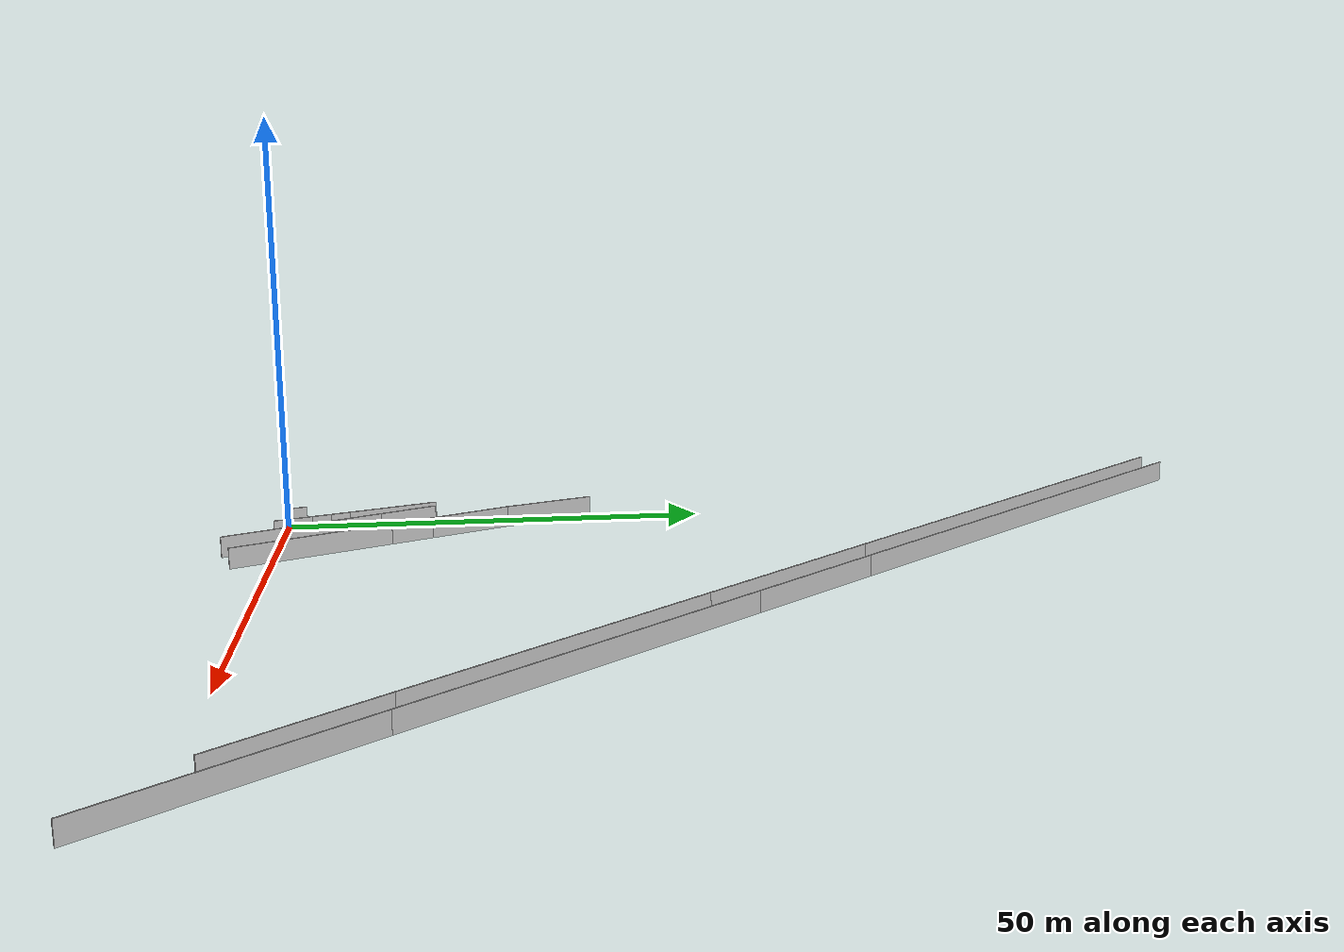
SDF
<?xml version="1.0" ?>
<sdf version="1.6">
  <model name="sps_2315">
    <pose frame="">0 0 0 0 -0 0</pose>
    <static>1</static>
    <self_collide>0</self_collide>
    <allow_auto_disable>0</allow_auto_disable>
    <link name="Wall82">
      <kinematic>0</kinematic>
      <gravity>1</gravity>
      <self_collide>0</self_collide>
      <collision name="collision">
        <geometry>
          <box>
            <size>30.2555 0.15 2.5</size>
          </box>
        </geometry>
        <pose frame="">0 0 0 0 -0 0</pose>
      </collision>
      <visual name="visual">
        <geometry>
          <box>
            <size>30.2555 0.15 2.5</size>
          </box>
        </geometry>
        <pose frame="">0 0 0 0 -0 0</pose>
        <cast_shadows>1</cast_shadows>
        <transparency>0.0</transparency>
      </visual>
      <pose frame="">69.8325 5.67018 1.25 0 -0 2.20088</pose>
    </link>
    <link name="Wall83">
      <kinematic>0</kinematic>
      <gravity>1</gravity>
      <self_collide>0</self_collide>
      <collision name="collision">
        <geometry>
          <box>
            <size>44.8899 0.15 2.5</size>
          </box>
        </geometry>
        <pose frame="">0 0 0 0 -0 0</pose>
      </collision>
      <visual name="visual">
        <geometry>
          <box>
            <size>44.8899 0.15 2.5</size>
          </box>
        </geometry>
        <pose frame="">0 0 0 0 -0 0</pose>
        <cast_shadows>1</cast_shadows>
        <transparency>0.0</transparency>
      </visual>
      <pose frame="">47.6942 36.0281 1.25 0 -0 2.20088</pose>
    </link>
    <link name="Wall84">
      <kinematic>0</kinematic>
      <gravity>1</gravity>
      <self_collide>0</self_collide>
      <collision name="collision">
        <geometry>
          <box>
            <size>16.9929 0.15 2.5</size>
          </box>
        </geometry>
        <pose frame="">0 0 0 0 -0 0</pose>
      </collision>
      <visual name="visual">
        <geometry>
          <box>
            <size>16.9929 0.15 2.5</size>
          </box>
        </geometry>
        <pose frame="">0 0 0 0 -0 0</pose>
        <cast_shadows>1</cast_shadows>
        <transparency>0.0</transparency>
      </visual>
      <pose frame="">29.4633 61.0281 1.25 0 -0 2.20088</pose>
    </link>
    <link name="Wall85">
      <kinematic>0</kinematic>
      <gravity>1</gravity>
      <self_collide>0</self_collide>
      <collision name="collision">
        <geometry>
          <box>
            <size>55.8873 0.15 2.5</size>
          </box>
        </geometry>
        <pose frame="">0 0 0 0 -0 0</pose>
      </collision>
      <visual name="visual">
        <geometry>
          <box>
            <size>55.8873 0.15 2.5</size>
          </box>
        </geometry>
        <pose frame="">0 0 0 0 -0 0</pose>
        <cast_shadows>1</cast_shadows>
        <transparency>0.0</transparency>
      </visual>
      <pose frame="">7.99237 90.471 1.25 0 -0 2.20088</pose>
    </link>
    <link name="Wall159">
      <kinematic>0</kinematic>
      <gravity>1</gravity>
      <self_collide>0</self_collide>
      <collision name="collision">
        <geometry>
          <box>
            <size>53.9646 0.15 2.5</size>
          </box>
        </geometry>
        <pose frame="">0 0 0 0 -0 0</pose>
      </collision>
      <visual name="visual">
        <geometry>
          <box>
            <size>53.9646 0.15 2.5</size>
          </box>
        </geometry>
        <pose frame="">0 0 0 0 -0 0</pose>
        <cast_shadows>1</cast_shadows>
        <transparency>0.0</transparency>
      </visual>
      <pose frame="">4.72197 89.6942 1.25 0 0 -0.940712</pose>
    </link>
    <link name="Wall160">
      <kinematic>0</kinematic>
      <gravity>1</gravity>
      <self_collide>0</self_collide>
      <collision name="collision">
        <geometry>
          <box>
            <size>23.5045 0.15 2.5</size>
          </box>
        </geometry>
        <pose frame="">0 0 0 0 -0 0</pose>
      </collision>
      <visual name="visual">
        <geometry>
          <box>
            <size>23.5045 0.15 2.5</size>
          </box>
        </geometry>
        <pose frame="">0 0 0 0 -0 0</pose>
        <cast_shadows>1</cast_shadows>
        <transparency>0.0</transparency>
      </visual>
      <pose frame="">27.5449 58.3975 1.25 0 0 -0.940712</pose>
    </link>
    <link name="Wall161">
      <kinematic>0</kinematic>
      <gravity>1</gravity>
      <self_collide>0</self_collide>
      <collision name="collision">
        <geometry>
          <box>
            <size>38.3784 0.15 2.5</size>
          </box>
        </geometry>
        <pose frame="">0 0 0 0 -0 0</pose>
      </collision>
      <visual name="visual">
        <geometry>
          <box>
            <size>38.3784 0.15 2.5</size>
          </box>
        </geometry>
        <pose frame="">0 0 0 0 -0 0</pose>
        <cast_shadows>1</cast_shadows>
        <transparency>0.0</transparency>
      </visual>
      <pose frame="">45.776 33.3975 1.25 0 0 -0.940712</pose>
    </link>
    <link name="Wall162">
      <kinematic>0</kinematic>
      <gravity>1</gravity>
      <self_collide>0</self_collide>
      <collision name="collision">
        <geometry>
          <box>
            <size>19.3454 0.15 2.5</size>
          </box>
        </geometry>
        <pose frame="">0 0 0 0 -0 0</pose>
      </collision>
      <visual name="visual">
        <geometry>
          <box>
            <size>19.3454 0.15 2.5</size>
          </box>
        </geometry>
        <pose frame="">0 0 0 0 -0 0</pose>
        <cast_shadows>1</cast_shadows>
        <transparency>0.0</transparency>
      </visual>
      <pose frame="">62.7818 10.0778 1.25 0 0 -0.940712</pose>
    </link>
    <link name="Wall386">
      <kinematic>0</kinematic>
      <gravity>1</gravity>
      <self_collide>0</self_collide>
      <collision name="collision">
        <geometry>
          <box>
            <size>19.1053 0.15 2.5</size>
          </box>
        </geometry>
        <pose frame="">0 0 0 0 -0 0</pose>
      </collision>
      <visual name="visual">
        <geometry>
          <box>
            <size>19.1053 0.15 2.5</size>
          </box>
        </geometry>
        <pose frame="">0 0 0 0 -0 0</pose>
        <cast_shadows>1</cast_shadows>
        <transparency>0.0</transparency>
      </visual>
      <pose frame="">7.07455 2.7101 1.25 0 0 -1.19334</pose>
    </link>
    <link name="Wall484">
      <kinematic>0</kinematic>
      <gravity>1</gravity>
      <self_collide>0</self_collide>
      <collision name="collision">
        <geometry>
          <box>
            <size>9.47231 0.15 2.5</size>
          </box>
        </geometry>
        <pose frame="">0 0 0 0 -0 0</pose>
      </collision>
      <visual name="visual">
        <geometry>
          <box>
            <size>9.47231 0.15 2.5</size>
          </box>
        </geometry>
        <pose frame="">0 0 0 0 -0 0</pose>
        <cast_shadows>1</cast_shadows>
        <transparency>0.0</transparency>
      </visual>
      <pose frame="">4.04192 22.2957 1.25 0 0 -1.19326</pose>
    </link>
    <link name="Wall485">
      <kinematic>0</kinematic>
      <gravity>1</gravity>
      <self_collide>0</self_collide>
      <collision name="collision">
        <geometry>
          <box>
            <size>5.03559 0.15 2.5</size>
          </box>
        </geometry>
        <pose frame="">0 0 0 0 -0 0</pose>
      </collision>
      <visual name="visual">
        <geometry>
          <box>
            <size>5.03559 0.15 2.5</size>
          </box>
        </geometry>
        <pose frame="">0 0 0 0 -0 0</pose>
        <cast_shadows>1</cast_shadows>
        <transparency>0.0</transparency>
      </visual>
      <pose frame="">6.71593 15.5526 1.25 0 0 -1.19326</pose>
    </link>
    <link name="Wall583">
      <kinematic>0</kinematic>
      <gravity>1</gravity>
      <self_collide>0</self_collide>
      <collision name="collision">
        <geometry>
          <box>
            <size>10.616 0.15 2.5</size>
          </box>
        </geometry>
        <pose frame="">0 0 0 0 -0 0</pose>
      </collision>
      <visual name="visual">
        <geometry>
          <box>
            <size>10.616 0.15 2.5</size>
          </box>
        </geometry>
        <pose frame="">0 0 0 0 -0 0</pose>
        <cast_shadows>1</cast_shadows>
        <transparency>0.0</transparency>
      </visual>
      <pose frame="">1.04823 12.8137 1.25 0 0 -1.27624</pose>
    </link>
    <link name="Wall584">
      <kinematic>0</kinematic>
      <gravity>1</gravity>
      <self_collide>0</self_collide>
      <collision name="collision">
        <geometry>
          <box>
            <size>19.1053 0.15 2.5</size>
          </box>
        </geometry>
        <pose frame="">0 0 0 0 -0 0</pose>
      </collision>
      <visual name="visual">
        <geometry>
          <box>
            <size>19.1053 0.15 2.5</size>
          </box>
        </geometry>
        <pose frame="">0 0 0 0 -0 0</pose>
        <cast_shadows>1</cast_shadows>
        <transparency>0.0</transparency>
      </visual>
      <pose frame="">11.165 4.33201 1.25 0 0 -1.19332</pose>
    </link>
    <link name="Wall660">
      <kinematic>0</kinematic>
      <gravity>1</gravity>
      <self_collide>0</self_collide>
      <collision name="collision">
        <geometry>
          <box>
            <size>10.6083 0.15 2.5</size>
          </box>
        </geometry>
        <pose frame="">0 0 0 0 -0 0</pose>
      </collision>
      <visual name="visual">
        <geometry>
          <box>
            <size>10.6083 0.15 2.5</size>
          </box>
        </geometry>
        <pose frame="">0 0 0 0 -0 0</pose>
        <cast_shadows>1</cast_shadows>
        <transparency>0.0</transparency>
      </visual>
      <pose frame="">0.736747 31.7681 1.25 0 0 -1.27241</pose>
    </link>
    <link name="Wall662">
      <kinematic>0</kinematic>
      <gravity>1</gravity>
      <self_collide>0</self_collide>
      <collision name="collision">
        <geometry>
          <box>
            <size>6.78024 0.15 2.5</size>
          </box>
        </geometry>
        <pose frame="">0 0 0 0 -0 0</pose>
      </collision>
      <visual name="visual">
        <geometry>
          <box>
            <size>6.78024 0.15 2.5</size>
          </box>
        </geometry>
        <pose frame="">0 0 0 0 -0 0</pose>
        <cast_shadows>1</cast_shadows>
        <transparency>0.0</transparency>
      </visual>
      <pose frame="">2.30422 14.7417 1.25 0 0 -1.19328</pose>
    </link>
    <link name="Wall4706">
      <kinematic>0</kinematic>
      <gravity>1</gravity>
      <self_collide>0</self_collide>
      <collision name="collision">
        <geometry>
          <box>
            <size>2.25462 0.15 2.5</size>
          </box>
        </geometry>
        <pose frame="">0 0 0 0 -0 0</pose>
      </collision>
      <visual name="visual">
        <geometry>
          <box>
            <size>2.25462 0.15 2.5</size>
          </box>
        </geometry>
        <pose frame="">0 0 0 0 -0 0</pose>
        <cast_shadows>1</cast_shadows>
        <transparency>0.0</transparency>
      </visual>
      <pose frame="">4.82046 0.165297 1.25 0 -0 1.85343</pose>
    </link>
    <link name="Wall4707">
      <kinematic>0</kinematic>
      <gravity>1</gravity>
      <self_collide>0</self_collide>
      <collision name="collision">
        <geometry>
          <box>
            <size>2.25455 0.15 2.5</size>
          </box>
        </geometry>
        <pose frame="">0 0 0 0 -0 0</pose>
      </collision>
      <visual name="visual">
        <geometry>
          <box>
            <size>2.25455 0.15 2.5</size>
          </box>
        </geometry>
        <pose frame="">0 0 0 0 -0 0</pose>
        <cast_shadows>1</cast_shadows>
        <transparency>0.0</transparency>
      </visual>
      <pose frame="">4.18917 2.3297 1.25 0 -0 1.85575</pose>
    </link>
    <link name="Wall4708">
      <kinematic>0</kinematic>
      <gravity>1</gravity>
      <self_collide>0</self_collide>
      <collision name="collision">
        <geometry>
          <box>
            <size>2.25463 0.15 2.5</size>
          </box>
        </geometry>
        <pose frame="">0 0 0 0 -0 0</pose>
      </collision>
      <visual name="visual">
        <geometry>
          <box>
            <size>2.25463 0.15 2.5</size>
          </box>
        </geometry>
        <pose frame="">0 0 0 0 -0 0</pose>
        <cast_shadows>1</cast_shadows>
        <transparency>0.0</transparency>
      </visual>
      <pose frame="">3.55276 4.4926 1.25 0 -0 1.85817</pose>
    </link>
    <link name="Wall4709">
      <kinematic>0</kinematic>
      <gravity>1</gravity>
      <self_collide>0</self_collide>
      <collision name="collision">
        <geometry>
          <box>
            <size>2.25451 0.15 2.5</size>
          </box>
        </geometry>
        <pose frame="">0 0 0 0 -0 0</pose>
      </collision>
      <visual name="visual">
        <geometry>
          <box>
            <size>2.25451 0.15 2.5</size>
          </box>
        </geometry>
        <pose frame="">0 0 0 0 -0 0</pose>
        <cast_shadows>1</cast_shadows>
        <transparency>0.0</transparency>
      </visual>
      <pose frame="">2.91125 6.65398 1.25 0 -0 1.86047</pose>
    </link>
    <link name="Wall6432">
      <kinematic>0</kinematic>
      <gravity>1</gravity>
      <self_collide>0</self_collide>
      <collision name="collision">
        <geometry>
          <box>
            <size>2.24497 0.15 2.5</size>
          </box>
        </geometry>
        <pose frame="">0 0 0 0 -0 0</pose>
      </collision>
      <visual name="visual">
        <geometry>
          <box>
            <size>2.24497 0.15 2.5</size>
          </box>
        </geometry>
        <pose frame="">0 0 0 0 -0 0</pose>
        <cast_shadows>1</cast_shadows>
        <transparency>0.0</transparency>
      </visual>
      <pose frame="">0.21685 1.16548 1.25 0 -0 1.85578</pose>
    </link>
  </model>
</sdf>
